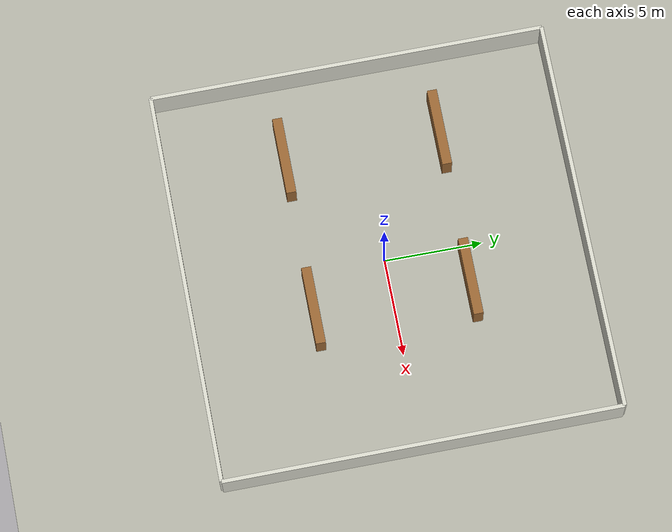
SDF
<?xml version="1.0" ?>
<sdf version="1.9">
  <world name="warehouse">

    <physics name="1ms" type="ignored">
      <max_step_size>0.001</max_step_size>
      <real_time_factor>1.0</real_time_factor>
    </physics>

    <plugin filename="gz-sim-physics-system"
            name="gz::sim::systems::Physics"/>
    <plugin filename="gz-sim-sensors-system"
            name="gz::sim::systems::Sensors">
      <render_engine>ogre2</render_engine>
    </plugin>
    <plugin filename="gz-sim-scene-broadcaster-system"
            name="gz::sim::systems::SceneBroadcaster"/>
    <plugin filename="gz-sim-user-commands-system"
            name="gz::sim::systems::UserCommands"/>
    <plugin filename="gz-sim-contact-system"
            name="gz::sim::systems::Contact"/>

    <light name="sun" type="directional">
      <cast_shadows>true</cast_shadows>
      <pose>0 0 10 0 0 0</pose>
      <diffuse>0.8 0.8 0.8 1</diffuse>
      <specular>0.2 0.2 0.2 1</specular>
      <direction>-0.5 0.1 -0.9</direction>
    </light>

    <!-- Ground -->
    <model name="ground_plane">
      <static>true</static>
      <link name="link">
        <collision name="collision">
          <geometry><plane><normal>0 0 1</normal></plane></geometry>
          <surface>
            <friction><ode><mu>0.8</mu><mu2>0.8</mu2></ode></friction>
          </surface>
        </collision>
        <visual name="visual">
          <geometry><plane><normal>0 0 1</normal><size>40 40</size></plane></geometry>
          <material>
            <ambient>0.7 0.7 0.65 1</ambient>
            <diffuse>0.7 0.7 0.65 1</diffuse>
          </material>
        </visual>
      </link>
    </model>

    <!-- Perimeter walls (20 x 20 m interior) -->
    <model name="wall_north">
      <static>true</static>
      <pose>0 10.1 1.0 0 0 0</pose>
      <link name="link">
        <collision name="col"><geometry><box><size>20.2 0.2 2.0</size></box></geometry></collision>
        <visual name="vis">
          <geometry><box><size>20.2 0.2 2.0</size></box></geometry>
          <material><ambient>0.85 0.85 0.8 1</ambient><diffuse>0.85 0.85 0.8 1</diffuse></material>
        </visual>
      </link>
    </model>

    <model name="wall_south">
      <static>true</static>
      <pose>0 -10.1 1.0 0 0 0</pose>
      <link name="link">
        <collision name="col"><geometry><box><size>20.2 0.2 2.0</size></box></geometry></collision>
        <visual name="vis">
          <geometry><box><size>20.2 0.2 2.0</size></box></geometry>
          <material><ambient>0.85 0.85 0.8 1</ambient><diffuse>0.85 0.85 0.8 1</diffuse></material>
        </visual>
      </link>
    </model>

    <model name="wall_east">
      <static>true</static>
      <pose>10.1 0 1.0 0 0 0</pose>
      <link name="link">
        <collision name="col"><geometry><box><size>0.2 20.2 2.0</size></box></geometry></collision>
        <visual name="vis">
          <geometry><box><size>0.2 20.2 2.0</size></box></geometry>
          <material><ambient>0.85 0.85 0.8 1</ambient><diffuse>0.85 0.85 0.8 1</diffuse></material>
        </visual>
      </link>
    </model>

    <model name="wall_west">
      <static>true</static>
      <pose>-10.1 0 1.0 0 0 0</pose>
      <link name="link">
        <collision name="col"><geometry><box><size>0.2 20.2 2.0</size></box></geometry></collision>
        <visual name="vis">
          <geometry><box><size>0.2 20.2 2.0</size></box></geometry>
          <material><ambient>0.85 0.85 0.8 1</ambient><diffuse>0.85 0.85 0.8 1</diffuse></material>
        </visual>
      </link>
    </model>

    <!-- Shelf rows -->
    <model name="shelf_row_a_1">
      <static>true</static>
      <pose>-6 4 0.75 0 0 0</pose>
      <link name="link">
        <collision name="col"><geometry><box><size>4.0 0.5 1.5</size></box></geometry></collision>
        <visual name="vis">
          <geometry><box><size>4.0 0.5 1.5</size></box></geometry>
          <material><ambient>0.6 0.4 0.2 1</ambient><diffuse>0.6 0.4 0.2 1</diffuse></material>
        </visual>
      </link>
    </model>

    <model name="shelf_row_a_2">
      <static>true</static>
      <pose>-6 -4 0.75 0 0 0</pose>
      <link name="link">
        <collision name="col"><geometry><box><size>4.0 0.5 1.5</size></box></geometry></collision>
        <visual name="vis">
          <geometry><box><size>4.0 0.5 1.5</size></box></geometry>
          <material><ambient>0.6 0.4 0.2 1</ambient><diffuse>0.6 0.4 0.2 1</diffuse></material>
        </visual>
      </link>
    </model>

    <model name="shelf_row_b_1">
      <static>true</static>
      <pose>2 4 0.75 0 0 0</pose>
      <link name="link">
        <collision name="col"><geometry><box><size>4.0 0.5 1.5</size></box></geometry></collision>
        <visual name="vis">
          <geometry><box><size>4.0 0.5 1.5</size></box></geometry>
          <material><ambient>0.6 0.4 0.2 1</ambient><diffuse>0.6 0.4 0.2 1</diffuse></material>
        </visual>
      </link>
    </model>

    <model name="shelf_row_b_2">
      <static>true</static>
      <pose>2 -4 0.75 0 0 0</pose>
      <link name="link">
        <collision name="col"><geometry><box><size>4.0 0.5 1.5</size></box></geometry></collision>
        <visual name="vis">
          <geometry><box><size>4.0 0.5 1.5</size></box></geometry>
          <material><ambient>0.6 0.4 0.2 1</ambient><diffuse>0.6 0.4 0.2 1</diffuse></material>
        </visual>
      </link>
    </model>

  </world>
</sdf>
